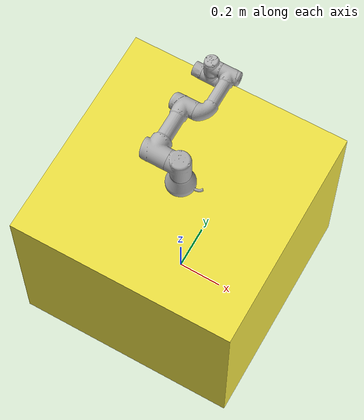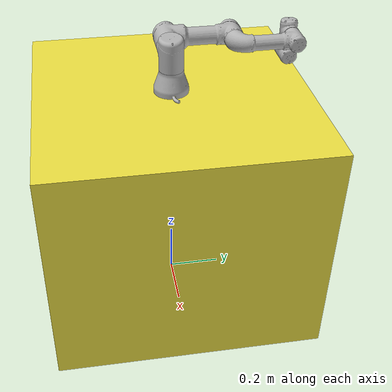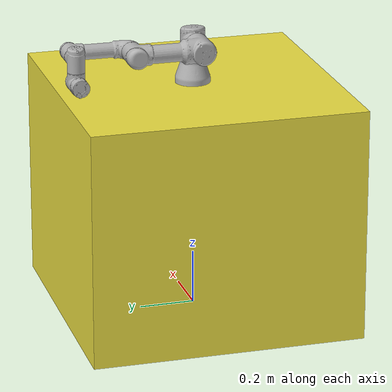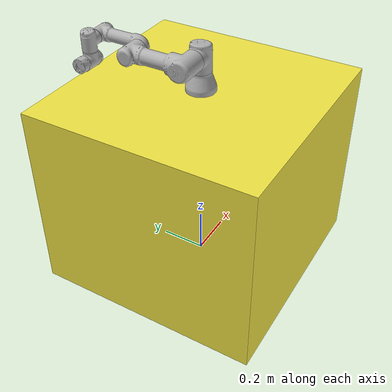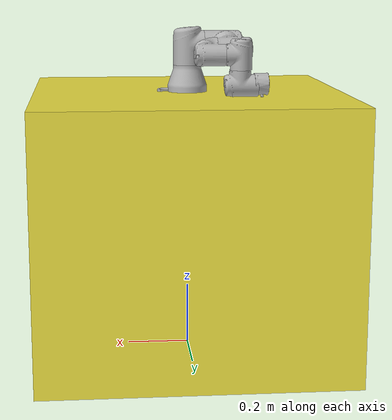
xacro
<?xml version="1.0"?>
<robot xmlns:xacro="http://wiki.ros.org/xacro"
       name="ur3" >

  <xacro:arg name="transmission_hw_interface" default="hardware_interface/PositionJointInterface"/>

  <!-- common stuff -->
  <xacro:include filename="$(find ur_description)/urdf/common.gazebo.xacro" />

  <!-- ur3 -->
  <xacro:include filename="$(find ur_description)/urdf/ur3.urdf.xacro" />

  <!-- arm -->
  <xacro:arg name="kinematics_config" default="$(find ur_description)/config/ur3_default.yaml"/>
  <xacro:ur3_robot prefix="" joint_limited="true"
    shoulder_pan_lower_limit="${-pi}" shoulder_pan_upper_limit="${pi}"
    shoulder_lift_lower_limit="${-pi}" shoulder_lift_upper_limit="${pi}"
    elbow_joint_lower_limit="${-pi}" elbow_joint_upper_limit="${pi}"
    wrist_1_lower_limit="${-pi}" wrist_1_upper_limit="${pi}"
    wrist_2_lower_limit="${-pi}" wrist_2_upper_limit="${pi}"
    wrist_3_lower_limit="${-pi}" wrist_3_upper_limit="${pi}"
    transmission_hw_interface="$(arg transmission_hw_interface)"
    kinematics_file="${load_yaml('$(arg kinematics_config)')}"
  />

  <link name="world" />

  <link name="box_link">
    <visual>
      <geometry>
        <box size="1.0 1.0 0.86"/>
      </geometry>
    </visual>
    <inertial>
        <origin xyz="0 0 0" rpy="0 0 0"/>
        <mass value="100"/>
        <inertia ixx="1.0" ixy="0" ixz="0" iyy="1.0" iyz="0" izz="1.0" />
    </inertial>
    <collision>
      <geometry>
        <box size="1.0 1.0 0.86"/>
      </geometry>
    </collision>
  </link>

  <joint name="world_joint" type="fixed">
    <parent link="world" />
    <child link = "box_link" />
    <origin xyz="0.0 0.0 0.43" rpy="0.0 0.0 0.0" />
  </joint>

   <joint name="box_joint" type="fixed">
    <parent link="box_link"/>
    <child link="base_link"/>
    <origin xyz="0.0 0.0 0.43" rpy="0 0 1.57" />
 </joint>

</robot>

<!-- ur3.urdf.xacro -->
<robot xmlns:xacro="http://ros.org/wiki/xacro">

<!--
  Author: Felix Messmer
-->

  <xacro:include filename="$(find ur_description)/urdf/ur.transmission.xacro" />
  <xacro:include filename="$(find ur_description)/urdf/ur.gazebo.xacro" />

  <xacro:property name="pi" value="3.14159265" />

  <!-- Inertia parameters -->
  <xacro:property name="base_mass" value="2.0" />  <!-- This mass might be incorrect -->
  <xacro:property name="shoulder_mass" value="2.0" />
  <xacro:property name="upper_arm_mass" value="3.42" />
  <xacro:property name="forearm_mass" value="1.26" />
  <xacro:property name="wrist_1_mass" value="0.8" />
  <xacro:property name="wrist_2_mass" value="0.8" />
  <xacro:property name="wrist_3_mass" value="0.35" />

  <xacro:property name="shoulder_cog" value="0.0 -0.02 0.0" />
  <xacro:property name="upper_arm_cog" value="0.13 0.0 0.1157" />
  <xacro:property name="forearm_cog" value="0.05 0.0 0.0238" />
  <xacro:property name="wrist_1_cog" value="0.0 0.0 0.01" />
  <xacro:property name="wrist_2_cog" value="0.0 0.0 0.01" />
  <xacro:property name="wrist_3_cog" value="0.0 0.0 -0.02" />

  <!-- Kinematic model -->
  <!-- Properties from urcontrol.conf -->
  <xacro:property name="ur3_d1" value="0.1519" />
  <xacro:property name="ur3_a2" value="-0.24365" />
  <xacro:property name="ur3_a3" value="-0.21325" />
  <xacro:property name="ur3_d4" value="0.11235" />
  <xacro:property name="ur3_d5" value="0.08535" />
  <xacro:property name="ur3_d6" value="0.0819" />

  <!-- Arbitrary offsets for shoulder/elbow joints -->
  <xacro:property name="shoulder_offset" value="0.1198" />  <!-- measured from model -->
  <xacro:property name="elbow_offset" value="-0.0925" /> <!-- measured from model -->

  <!-- link lengths used in model -->
  <xacro:property name="shoulder_height" value="${ur3_d1}" />
  <xacro:property name="upper_arm_length" value="${-ur3_a2}" />
  <xacro:property name="forearm_length" value="${-ur3_a3}" />
  <xacro:property name="wrist_1_length" value="${ur3_d4 - elbow_offset - shoulder_offset}" />
  <xacro:property name="wrist_2_length" value="${ur3_d5}" />
  <xacro:property name="wrist_3_length" value="${ur3_d6}" />

  <xacro:macro name="cylinder_inertial" params="radius length mass *origin">
    <inertial>
      <mass value="${mass}" />
      <xacro:insert_block name="origin" />
      <inertia ixx="${0.0833333 * mass * (3 * radius * radius + length * length)}" ixy="0.0" ixz="0.0"
        iyy="${0.0833333 * mass * (3 * radius * radius + length * length)}" iyz="0.0"
        izz="${0.5 * mass * radius * radius}" />
    </inertial>
  </xacro:macro>

  <xacro:macro name="ur3_robot" params="prefix joint_limited">

    <link name="${prefix}base_link" >
      <visual>
        <geometry>
          <mesh filename="package://ur_description/meshes/ur3/visual/base.dae"/>
        </geometry>
        <material name="LightGrey">
          <color rgba="0.7 0.7 0.7 1.0"/>
        </material>
      </visual>
      <collision>
        <geometry>
          <mesh filename="package://ur_description/meshes/ur3/collision/base.stl"/>
        </geometry>
      </collision>
      <xacro:cylinder_inertial radius="0.075" length="0.038" mass="${base_mass}">
        <origin xyz="0.0 0.0 0.0" rpy="0 0 0" />
      </xacro:cylinder_inertial>
    </link>

    <joint name="${prefix}shoulder_pan_joint" type="revolute">
      <parent link="${prefix}base_link" />
      <child link = "${prefix}shoulder_link" />
      <origin xyz="0.0 0.0 ${shoulder_height}" rpy="0.0 0.0 0.0" />
      <axis xyz="0 0 1" />
      <xacro:unless value="${joint_limited}">
        <limit lower="${-2.0 * pi}" upper="${2.0 * pi}" effort="330.0" velocity="2.16"/>
      </xacro:unless>
      <xacro:if value="${joint_limited}">
        <limit lower="${-pi}" upper="${pi}" effort="330.0" velocity="2.16"/>
      </xacro:if>
      <dynamics damping="0.0" friction="0.0"/>
    </joint>

    <link name="${prefix}shoulder_link">
      <visual>
        <geometry>
          <mesh filename="package://ur_description/meshes/ur3/visual/shoulder.dae"/>
        </geometry>
        <material name="LightGrey">
          <color rgba="0.7 0.7 0.7 1.0"/>
        </material>
      </visual>
      <collision>
        <geometry>
          <mesh filename="package://ur_description/meshes/ur3/collision/shoulder.stl"/>
        </geometry>
      </collision>
      <xacro:cylinder_inertial radius="0.075" length="0.178" mass="${shoulder_mass}">
        <origin xyz="0.0 0.0 0.0" rpy="0 0 0" />
      </xacro:cylinder_inertial>
    </link>

    <joint name="${prefix}shoulder_lift_joint" type="revolute">
      <parent link="${prefix}shoulder_link" />
      <child link = "${prefix}upper_arm_link" />
      <origin xyz="0.0 ${shoulder_offset} 0.0" rpy="0.0 ${pi / 2.0} 0.0" />
      <axis xyz="0 1 0" />
      <xacro:unless value="${joint_limited}">
        <limit lower="${-2.0 * pi}" upper="${2.0 * pi}" effort="330.0" velocity="2.16"/>
      </xacro:unless>
      <xacro:if value="${joint_limited}">
        <limit lower="${-pi}" upper="${pi}" effort="330.0" velocity="2.16"/>
      </xacro:if>
      <dynamics damping="0.0" friction="0.0"/>
    </joint>

    <link name="${prefix}upper_arm_link">
      <visual>
        <geometry>
          <mesh filename="package://ur_description/meshes/ur3/visual/upperarm.dae"/>
        </geometry>
        <material name="LightGrey">
          <color rgba="0.7 0.7 0.7 1.0"/>
        </material>
      </visual>
      <collision>
        <geometry>
          <mesh filename="package://ur_description/meshes/ur3/collision/upperarm.stl"/>
        </geometry>
      </collision>
      <xacro:cylinder_inertial radius="0.075" length="${-ur3_a2}" mass="${upper_arm_mass}">
        <origin xyz="0.0 0.0 ${-ur3_a2/2.0}" rpy="0 0 0" />
      </xacro:cylinder_inertial>
    </link>

    <joint name="${prefix}elbow_joint" type="revolute">
      <parent link="${prefix}upper_arm_link" />
      <child link = "${prefix}forearm_link" />
      <origin xyz="0.0 ${elbow_offset} ${upper_arm_length}" rpy="0.0 0.0 0.0" />
      <axis xyz="0 1 0" />
      <xacro:unless value="${joint_limited}">
        <limit lower="${-2.0 * pi}" upper="${2.0 * pi}" effort="150.0" velocity="3.15"/>
      </xacro:unless>
      <xacro:if value="${joint_limited}">
        <limit lower="${-pi}" upper="${pi}" effort="150.0" velocity="3.15"/>
      </xacro:if>
      <dynamics damping="0.0" friction="0.0"/>
    </joint>

    <link name="${prefix}forearm_link">
      <visual>
         <geometry>
          <mesh filename="package://ur_description/meshes/ur3/visual/forearm.dae"/>
        </geometry>
        <material name="LightGrey">
          <color rgba="0.7 0.7 0.7 1.0"/>
        </material>
      </visual>
      <collision>
        <geometry>
          <mesh filename="package://ur_description/meshes/ur3/collision/forearm.stl"/>
        </geometry>
      </collision>
      <xacro:cylinder_inertial radius="0.075" length="${-ur3_a3}" mass="${forearm_mass}">
        <origin xyz="0.0 0.0 ${-ur3_a3/2.0}" rpy="0 0 0" />
      </xacro:cylinder_inertial>
    </link>

    <joint name="${prefix}wrist_1_joint" type="revolute">
      <parent link="${prefix}forearm_link" />
      <child link = "${prefix}wrist_1_link" />
      <origin xyz="0.0 0.0 ${forearm_length}" rpy="0.0 ${pi / 2.0} 0.0" />
      <axis xyz="0 1 0" />
      <xacro:unless value="${joint_limited}">
        <limit lower="${-2.0 * pi}" upper="${2.0 * pi}" effort="54.0" velocity="3.2"/>
      </xacro:unless>
      <xacro:if value="${joint_limited}">
        <limit lower="${-pi}" upper="${pi}" effort="54.0" velocity="3.2"/>
      </xacro:if>
      <dynamics damping="0.0" friction="0.0"/>
    </joint>

    <link name="${prefix}wrist_1_link">
      <visual>
        <geometry>
          <mesh filename="package://ur_description/meshes/ur3/visual/wrist1.dae"/>
        </geometry>
        <material name="LightGrey">
          <color rgba="0.7 0.7 0.7 1.0"/>
        </material>
      </visual>
      <collision>
        <geometry>
          <mesh filename="package://ur_description/meshes/ur3/collision/wrist1.stl"/>
        </geometry>
      </collision>
      <xacro:cylinder_inertial radius="0.075" length="0.12" mass="${wrist_1_mass}">
        <origin xyz="0.0 0.0 0.0" rpy="0 0 0" />
      </xacro:cylinder_inertial>
    </link>

    <joint name="${prefix}wrist_2_joint" type="revolute">
      <parent link="${prefix}wrist_1_link" />
      <child link = "${prefix}wrist_2_link" />
      <origin xyz="0.0 ${wrist_1_length} 0.0" rpy="0.0 0.0 0.0" />
      <axis xyz="0 0 1" />
      <xacro:unless value="${joint_limited}">
        <limit lower="${-2.0 * pi}" upper="${2.0 * pi}" effort="54.0" velocity="3.2"/>
      </xacro:unless>
      <xacro:if value="${joint_limited}">
        <limit lower="${-pi}" upper="${pi}" effort="54.0" velocity="3.2"/>
      </xacro:if>
      <dynamics damping="0.0" friction="0.0"/>
    </joint>

    <link name="${prefix}wrist_2_link">
      <visual>
        <geometry>
          <mesh filename="package://ur_description/meshes/ur3/visual/wrist2.dae"/>
        </geometry>
        <material name="LightGrey">
          <color rgba="0.7 0.7 0.7 1.0"/>
        </material>
      </visual>
      <collision>
        <geometry>
          <mesh filename="package://ur_description/meshes/ur3/collision/wrist2.stl"/>
        </geometry>
      </collision>
      <xacro:cylinder_inertial radius="0.075" length="0.12" mass="${wrist_2_mass}">
        <origin xyz="0.0 0.0 0.0" rpy="0 0 0" />
      </xacro:cylinder_inertial>
    </link>

    <joint name="${prefix}wrist_3_joint" type="revolute">
      <parent link="${prefix}wrist_2_link" />
      <child link = "${prefix}wrist_3_link" />
      <origin xyz="0.0 0.0 ${wrist_2_length}" rpy="0.0 0.0 0.0" />
      <axis xyz="0 1 0" />
      <xacro:unless value="${joint_limited}">
        <limit lower="${-2.0 * pi}" upper="${2.0 * pi}" effort="54.0" velocity="3.2"/>
      </xacro:unless>
      <xacro:if value="${joint_limited}">
        <limit lower="${-pi}" upper="${pi}" effort="54.0" velocity="3.2"/>
      </xacro:if>
      <dynamics damping="0.0" friction="0.0"/>
    </joint>

    <link name="${prefix}wrist_3_link">
      <visual>
        <geometry>
          <mesh filename="package://ur_description/meshes/ur3/visual/wrist3.dae"/>
        </geometry>
        <material name="LightGrey">
          <color rgba="0.7 0.7 0.7 1.0"/>
        </material>
      </visual>
      <collision>
        <geometry>
          <mesh filename="package://ur_description/meshes/ur3/collision/wrist3.stl"/>
        </geometry>
      </collision>
      <xacro:cylinder_inertial radius="0.075" length="0.12" mass="${wrist_3_mass}">
        <origin xyz="0.0 0.0 0.0" rpy="0 0 0" />
      </xacro:cylinder_inertial>
    </link>

    <joint name="${prefix}ee_fixed_joint" type="fixed">
      <parent link="${prefix}wrist_3_link" />
      <child link = "${prefix}ee_link" />
      <origin xyz="0.0 ${wrist_3_length} 0.0" rpy="0.0 0.0 ${pi/2.0}" />
    </joint>

    <link name="${prefix}ee_link">
      <collision>
        <geometry>
          <box size="0.01 0.01 0.01"/>
        </geometry>
        <origin rpy="0 0 0" xyz="-0.01 0 0"/>
      </collision>
    </link>

    <xacro:ur_arm_transmission prefix="${prefix}" />
    <xacro:ur_arm_gazebo prefix="${prefix}" />

    <!-- ROS base_link to UR 'Base' Coordinates transform -->
    <link name="${prefix}base"/>
    <joint name="${prefix}base_link-base_fixed_joint" type="fixed">
      <!-- NOTE: this rotation is only needed as long as base_link itself is
                 not corrected wrt the real robot (ie: rotated over 180
                 degrees)
      -->
      <origin xyz="0 0 0" rpy="0 0 ${-pi}"/>
      <parent link="${prefix}base_link"/>
      <child link="${prefix}base"/>
    </joint>

    <!-- Frame coincident with all-zeros TCP on UR controller -->
    <link name="${prefix}tool0"/>
    <joint name="${prefix}wrist_3_link-tool0_fixed_joint" type="fixed">
      <origin xyz="0 ${wrist_3_length} 0" rpy="${pi/-2.0} 0 0"/>
      <parent link="${prefix}wrist_3_link"/>
      <child link="${prefix}tool0"/>
    </joint>

  </xacro:macro>
</robot>
